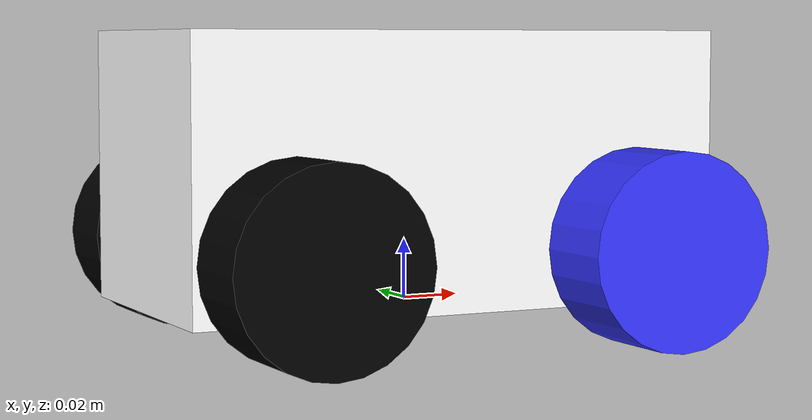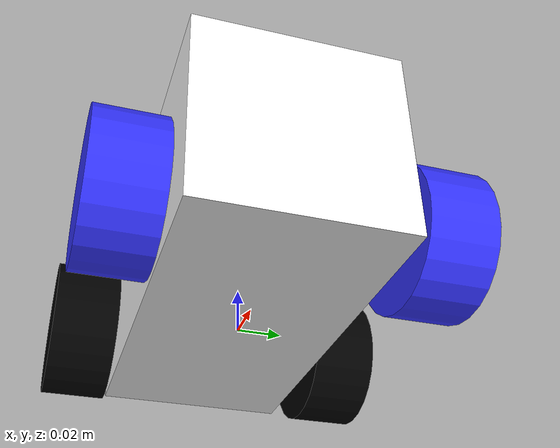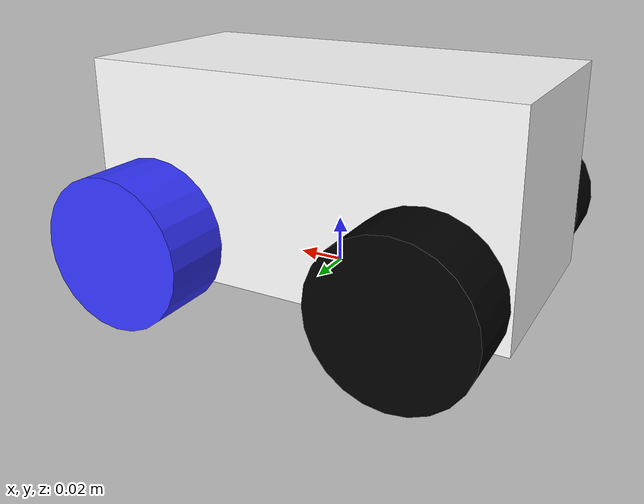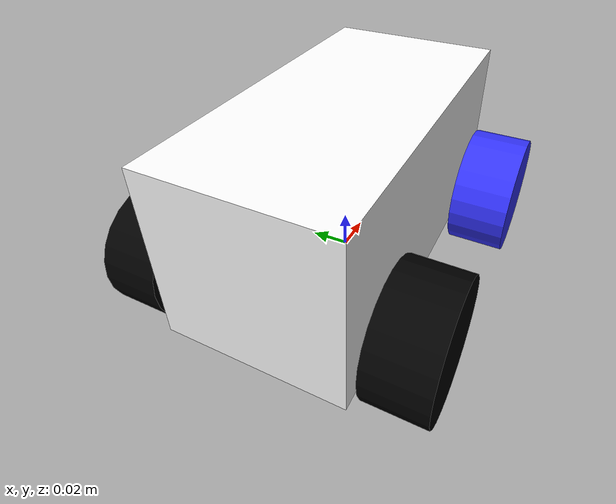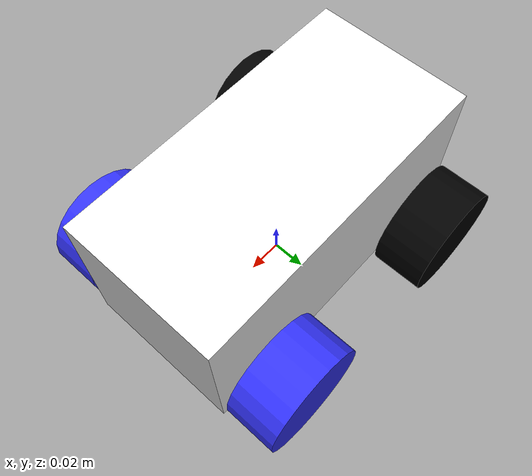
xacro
<?xml version="1.0"?>
<robot xmlns:xacro="http://www.ros.org/wiki/xacro" >

    <xacro:include filename="inertial_macros.xacro"/>
    <xacro:include filename="robot_params.xacro"/>
    <xacro:materials/>

    <!-- BASE LINK -->
    <link name="base_link"/>

    <!-- CHASSIS -->
    <joint name="chassis_joint" type="fixed">
        <parent link="base_link"/>
        <child link="chassis"/>
        <origin xyz="0 0 0"/>
    </joint>

    <link name="chassis">
        <visual>
            <origin xyz="${chassis_origin_x} ${chassis_origin_y} ${chassis_origin_z}"/>
            <geometry>
                <box size="${chassis_length} ${chassis_width} ${chassis_height}"/>
            </geometry>
            <material name="white"/>
        </visual>
        <collision>
            <origin xyz="${chassis_origin_x} ${chassis_origin_y} ${chassis_origin_z}"/>
            <geometry>
                <box size="${chassis_length} ${chassis_width} ${chassis_height}"/>
            </geometry>
        </collision>
        <xacro:inertial_box mass="${chassis_mass}" x="${chassis_length}" y="${chassis_width}" z="${chassis_height}">
            <origin xyz="${chassis_origin_x} ${chassis_origin_y} ${chassis_origin_z}" rpy="0 0 0"/>
        </xacro:inertial_box>
    </link>

    <!-- LEFT FRONT WHEEL -->
    <joint name="left_front_wheel_joint" type="continuous">
        <parent link="base_link"/>
        <child link="left_front_wheel"/>
        <origin xyz="${wheel_x_offset} ${wheel_y_offset} ${wheel_z_offset}" rpy="-${pi/2} 0 0"/>
        <axis xyz="0 0 1"/>

        <limit effort="${wheel_effort}" velocity="${wheel_velocity}"/>
        <dynamics damping="${wheel_damping}" friction="${wheel_friction}"/>
    </joint>

    <link name="left_front_wheel">
        <visual>
            <geometry>
                <cylinder radius="${wheel_radius}" length="${wheel_length}"/>
            </geometry>
            <material name="blue"/>
        </visual>
        <collision>
            <geometry>
                <cylinder radius="${wheel_radius}" length="${wheel_length}"/>
            </geometry>
        </collision>
        <xacro:inertial_cylinder mass="${wheel_mass}" length="${wheel_length}" radius="${wheel_radius}">
            <origin xyz="0 0 0" rpy="0 0 0"/>
        </xacro:inertial_cylinder>
    </link>

    <!-- RIGHT FRONT WHEEL -->
    <joint name="right_front_wheel_joint" type="continuous">
        <parent link="base_link"/>
        <child link="right_front_wheel"/>
        <origin xyz="${wheel_x_offset} -${wheel_y_offset} ${wheel_z_offset}" rpy="-${pi/2} 0 0"/>
        <axis xyz="0 0 1"/>

        <limit effort="${wheel_effort}" velocity="${wheel_velocity}"/>
        <dynamics damping="${wheel_damping}" friction="${wheel_friction}"/>
    </joint>

    <link name="right_front_wheel">
        <visual>
            <geometry>
                <cylinder radius="${wheel_radius}" length="${wheel_length}"/>
            </geometry>
            <material name="blue"/>
        </visual>
        <collision>
            <geometry>
                <cylinder radius="${wheel_radius}" length="${wheel_length}"/>
            </geometry>
        </collision>
        <xacro:inertial_cylinder mass="${wheel_mass}" length="${wheel_length}" radius="${wheel_radius}">
            <origin xyz="0 0 0" rpy="0 0 0"/>
        </xacro:inertial_cylinder>
    </link>

    <!-- LEFT REAR WHEEL -->
    <joint name="left_rear_wheel_joint" type="continuous">
        <parent link="base_link"/>
        <child link="left_rear_wheel"/>
        <origin xyz="-${wheel_x_offset} ${wheel_y_offset} ${wheel_z_offset}" rpy="-${pi/2} 0 0"/>
        <axis xyz="0 0 1"/>

        <limit effort="${wheel_effort}" velocity="${wheel_velocity}"/>
        <dynamics damping="${wheel_damping}" friction="${wheel_friction}"/>
    </joint>

    <link name="left_rear_wheel">
        <visual>
            <geometry>
                <cylinder radius="${wheel_radius}" length="${wheel_length}"/>
            </geometry>
            <material name="black"/>
        </visual>
        <collision>
            <geometry>
                <cylinder radius="${wheel_radius}" length="${wheel_length}"/>
            </geometry>
        </collision>
        <xacro:inertial_cylinder mass="${wheel_mass}" length="${wheel_length}" radius="${wheel_radius}">
            <origin xyz="0 0 0" rpy="0 0 0"/>
        </xacro:inertial_cylinder>
    </link>

    <!-- RIGHT REAR WHEEL -->
    <joint name="right_rear_wheel_joint" type="continuous">
        <parent link="base_link"/>
        <child link="right_rear_wheel"/>
        <origin xyz="-${wheel_x_offset} -${wheel_y_offset} ${wheel_z_offset}" rpy="-${pi/2} 0 0"/>
        <axis xyz="0 0 1"/>

        <limit effort="${wheel_effort}" velocity="${wheel_velocity}"/>
        <dynamics damping="${wheel_damping}" friction="${wheel_friction}"/>
    </joint>

    <link name="right_rear_wheel">
        <visual>
            <geometry>
                <cylinder radius="${wheel_radius}" length="${wheel_length}"/>
            </geometry>
            <material name="black"/>
        </visual>
        <collision>
            <geometry>
                <cylinder radius="${wheel_radius}" length="${wheel_length}"/>
            </geometry>
        </collision>
        <xacro:inertial_cylinder mass="${wheel_mass}" length="${wheel_length}" radius="${wheel_radius}">
            <origin xyz="0 0 0" rpy="0 0 0"/>
        </xacro:inertial_cylinder>
    </link>

    <!-- GAZEBO MATERIALS -->
    <gazebo reference="chassis">
        <material>Gazebo/White</material>
        <mu1>1.0</mu1>
        <mu2>1.0</mu2>
    </gazebo>

    <gazebo reference="left_front_wheel">
        <material>Gazebo/Blue</material>
        <mu1>1.0</mu1>
        <mu2>1.0</mu2>
    </gazebo>

    <gazebo reference="right_front_wheel">
        <material>Gazebo/Blue</material>
        <mu1>1.0</mu1>
        <mu2>1.0</mu2>
    </gazebo>

    <gazebo reference="left_rear_wheel">
        <material>Gazebo/Black</material>
        <mu1>1.0</mu1>
        <mu2>1.0</mu2>
    </gazebo>

    <gazebo reference="right_rear_wheel">
        <material>Gazebo/Black</material>
        <mu1>1.0</mu1>
        <mu2>1.0</mu2>
    </gazebo>

    <gazebo reference="laser_frame">
        <material>Gazebo/Red</material>
    </gazebo>

    <gazebo reference="camera_link">
        <material>Gazebo/Red</material>
    </gazebo>

</robot>

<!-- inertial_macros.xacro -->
<robot xmlns:xacro="http://www.ros.org/wiki/xacro" >

    <!-- Specify some standard inertial calculations https://en.wikipedia.org/wiki/List_of_moments_of_inertia -->
    <!-- These make use of xacro's mathematical functionality -->

    <xacro:property name="chassis_x_dim" value="0.186"/>
    <xacro:property name="chassis_y_dim" value="0.093"/>
    <xacro:property name="chassis_z_dim" value="0.093"/>

    <xacro:macro name="inertial_box" params="mass x y z *origin">
        <inertial>
            <xacro:insert_block name="origin"/>
            <mass value="${mass}" />
            <inertia ixx="${(1/12) * mass * (y*y+z*z)}" ixy="0.0" ixz="0.0"
                    iyy="${(1/12) * mass * (x*x+z*z)}" iyz="0.0"
                    izz="${(1/12) * mass * (x*x+y*y)}" />
        </inertial>
    </xacro:macro>

    <xacro:macro name="inertial_cylinder" params="mass length radius *origin">
        <inertial>
            <xacro:insert_block name="origin"/>
            <mass value="${mass}" />
            <inertia ixx="${(1/12) * mass * (3*radius*radius + length*length)}" ixy="0.0" ixz="0.0"
                    iyy="${(1/12) * mass * (3*radius*radius + length*length)}" iyz="0.0"
                    izz="${(1/2) * mass * (radius*radius)}" />
        </inertial>
    </xacro:macro>

</robot>

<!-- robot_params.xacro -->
<robot xmlns:xacro="http://www.ros.org/wiki/xacro" >

    <!-- CONSTANTS -->
    <xacro:property name="wheel_space_to_chassis" value="0.004"/> <!-- Measured -->

    <!-- CHASSIS -->
    <xacro:property name="chassis_length" value="0.186"/> <!-- Measured -->
    <xacro:property name="chassis_width"  value="0.093"/> <!-- Measured -->
    <xacro:property name="chassis_height" value="0.091"/> <!-- Measured -->
    <xacro:property name="chassis_mass"   value="0.70"/>  <!-- Frame + battery (kg) -->

    <xacro:property name="chassis_origin_x" value="0"/>
    <xacro:property name="chassis_origin_y" value="0"/>
    <xacro:property name="chassis_origin_z" value="0.0455"/>

    <!-- WHEELS PARAMETERS -->
    <xacro:property name="wheel_radius" value="0.0325"/> <!-- Measured -->
    <xacro:property name="wheel_length" value="0.030"/>  <!-- Measured -->
    <xacro:property name="wheel_mass"   value="0.0375"/> <!-- Estimated -->

    <xacro:property name="wheel_effort"   value="1000"/>
    <xacro:property name="wheel_velocity" value="1000"/>
    <xacro:property name="wheel_damping"  value="0.5"/>
    <xacro:property name="wheel_friction" value="1.0"/>

    <!-- WHEEL GEOMETRY -->
    <xacro:property name="wheel_x_offset"   value="${(chassis_length / 2) - wheel_radius}"/> <!-- Made wheel flush with chassis -->
    <xacro:property name="wheel_y_offset"   value="${(chassis_width / 2) + (wheel_length / 2) + wheel_space_to_chassis}"/>
    <xacro:property name="wheel_z_offset"   value="0.02"/>
    <xacro:property name="wheel_diameter"   value="${wheel_radius * 2}"/>
    <xacro:property name="wheel_separation" value="${chassis_width + (wheel_length * 2) + (wheel_space_to_chassis * 2)}"/>

    <!-- LIDAR PARAMETERS -->
    <xacro:property name="lidar_radius" value="0.0175"/> <!-- Measured -->
    <xacro:property name="lidar_length" value="0.035"/>  <!-- Measured -->
    <xacro:property name="lidar_mass"   value="0.0375"/> <!-- Estimated -->

    <xacro:property name="lidar_origin_x" value="-0.023"/> <!-- Estimated -->
    <xacro:property name="lidar_origin_y" value="0"/>
    <xacro:property name="lidar_origin_z" value="${chassis_origin_z + chassis_height/2 + lidar_length/2}"/>

     <!-- CAMERA PARAMETERS -->
    <xacro:property name="camera_size_width"  value="0.048"/>  <!-- Measured -->
    <xacro:property name="camera_size_length" value="0.048"/>  <!-- Measured -->
    <xacro:property name="camera_size_depth"  value="0.03"/>   <!-- Measured -->
    <xacro:property name="camera_mass"        value="0.0375"/> <!-- Estimated -->

    <xacro:property name="camera_origin_x" value="${chassis_length/2 + camera_size_depth/2}"/>
    <xacro:property name="camera_origin_y" value="0"/>
    <xacro:property name="camera_origin_z" value="${chassis_height/2}"/>

    <!-- GAZEBO PLUGIN PARAMETERS -->
    <xacro:property name="gazebo_max_wheel_torque"       value="${wheel_effort}"/>
    <xacro:property name="gazebo_max_wheel_acceleration" value="5.0"/>
    <xacro:property name="gazebo_mu1"                    value="0.2"/>
    <xacro:property name="gazebo_mu2"                    value="0.2"/>

    <!-- COLORS -->
    <xacro:macro name="materials">
        <material name="white"><color rgba="1 1 1 1"/></material>
        <material name="orange"><color rgba="1 0.3 0.1 1"/></material>
        <material name="blue"><color rgba="0.2 0.2 1 1"/></material>
        <material name="black"><color rgba="0 0 0 1"/></material>
        <material name="red"><color rgba="1 0 0 1"/></material>
    </xacro:macro>

</robot>
